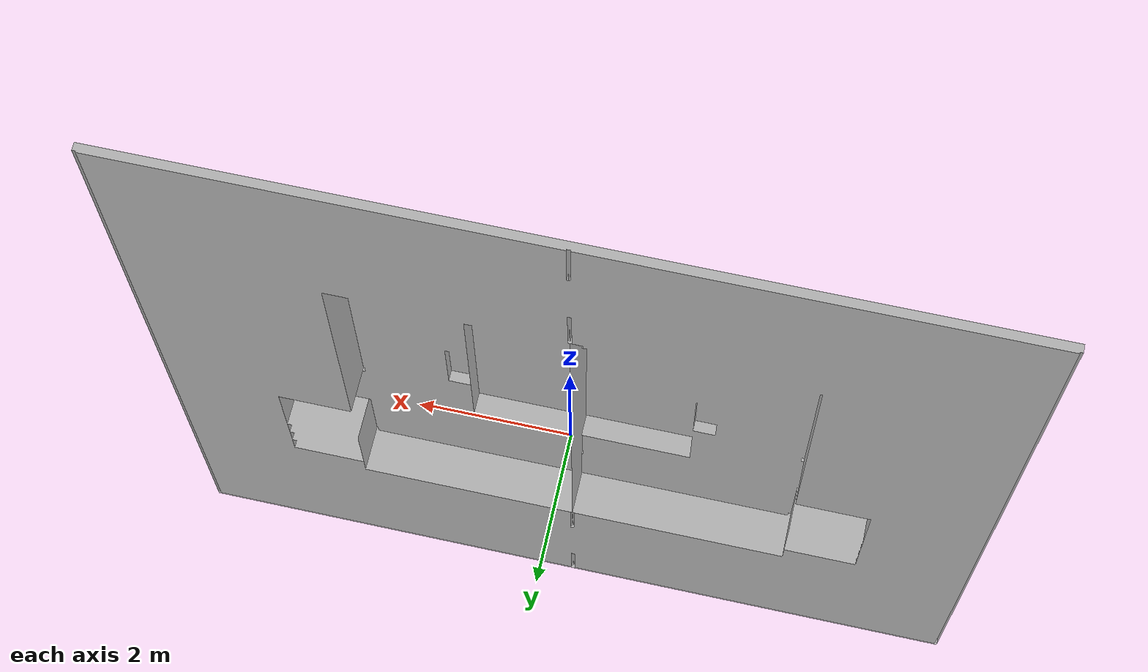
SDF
<?xml version="1.0"?>
<sdf version="1.10">
<world name="robocon2027">
<plugin
filename="gz-sim-sensors-system"
name="gz::sim::systems::Sensors">
</plugin>
<physics name="default_physics" type="ode">
<max_step_size>0.001</max_step_size>
<real_time_factor>1</real_time_factor>
<real_time_update_rate>1000</real_time_update_rate>
</physics>

<scene>
<ambient>0.4 0.4 0.4 1</ambient>
<background>0.7 0.7 0.7 1</background>
<shadows>true</shadows>
</scene>

<light name="sun" type="directional">
<cast_shadows>true</cast_shadows>
<pose>0 0 10 0 0 0</pose>
<diffuse>1 1 1 1</diffuse>
<specular>0.2 0.2 0.2 1</specular>
<direction>-0.3 -0.3 -1</direction>
</light>

<model name="field">
<static>true</static>

<link name="field_link">

<visual name="field_visual">
<pose>0 0 0 1.5708 0 0</pose>
<geometry>
<mesh>
<uri>model://robocon2027_description/meshes/visual/robocon2027.glb</uri>
</mesh>
</geometry>
</visual>

<collision name="field_collision">
<geometry>
<mesh>
<uri>model://robocon2027_description/meshes/field/field.stl</uri>
</mesh>
</geometry>
</collision>

</link>
</model>

<model name="cylinder">
<static>true</static>

<link name="cylinder_link">

<collision name="cylinder_collision">
<geometry>
<mesh>
<uri>model://robocon2027_description/meshes/field/cylinder.stl</uri>
</mesh>
</geometry>
</collision>

</link>
</model>

<model name="tower">
<static>true</static>

<link name="tower_link">

<collision name="tower_collision">
<geometry>
<mesh>
<uri>model://robocon2027_description/meshes/field/tower.stl</uri>
</mesh>
</geometry>
</collision>

</link>
</model>

</world>
</sdf>
